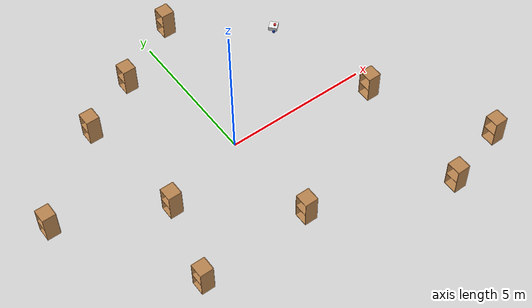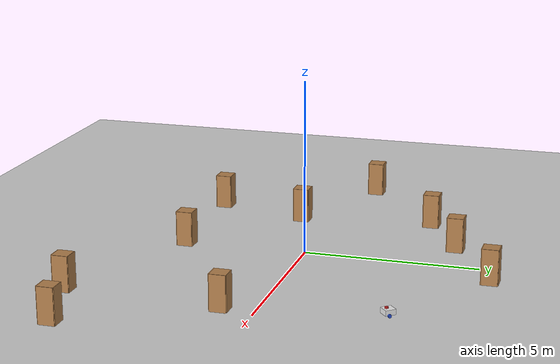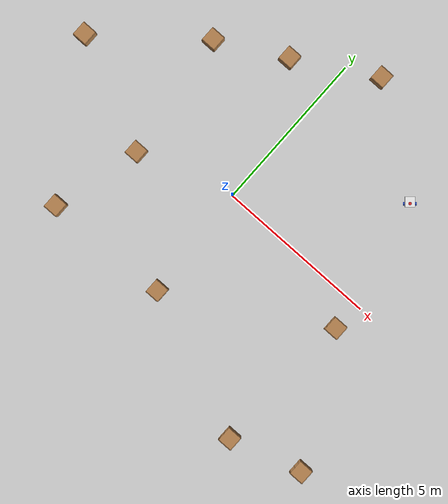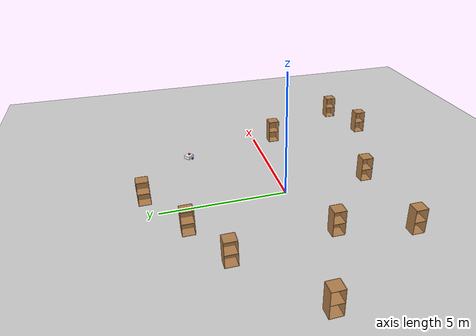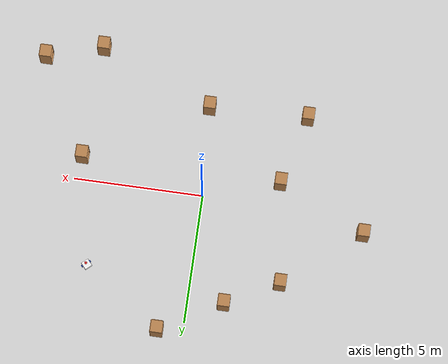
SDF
<sdf version="1.7">
 <world name="default">
  <light name="sun" type="directional">
   <pose>0 0 10 0 -0 0</pose>
   <diffuse>0.8 0.8 0.8 1</diffuse>
   <specular>0.2 0.2 0.2 1</specular>
   <attenuation>
    <range>1000</range>
    <constant>0.9</constant>
    <linear>0.01</linear>
    <quadratic>0.001</quadratic>
   </attenuation>
   <direction>-0.5 0.1 -0.9</direction>
   <spot><inner_angle>0</inner_angle><outer_angle>0</outer_angle><falloff>0</falloff></spot>
  </light>
  <model name="ground_plane">
   <static>1</static>
   <link name="link">
    <collision name="collision">
     <geometry><plane><normal>0 0 1</normal><size>100 100</size></plane></geometry>
     <surface><friction><ode><mu>100</mu><mu2>50</mu2></ode></friction></surface>
    </collision>
    <visual name="visual">
     <cast_shadows>0</cast_shadows>
     <geometry><plane><normal>0 0 1</normal><size>100 100</size></plane></geometry>
     <material>
      <script><uri>file://media/materials/scripts/gazebo.material</uri><name>Gazebo/Grey</name></script>
     </material>
    </visual>
   </link>
  </model>
  <gravity>0 0 -9.8</gravity>
  <magnetic_field>6e-06 2.3e-05 -4.2e-05</magnetic_field>
  <atmosphere type="adiabatic"/>
  <physics type="ode">
   <max_step_size>0.001</max_step_size>
   <real_time_factor>1</real_time_factor>
   <real_time_update_rate>1000</real_time_update_rate>
  </physics>
  <scene><ambient>0.4 0.4 0.4 1</ambient><background>0.7 0.7 0.7 1</background><shadows>1</shadows></scene>
  <audio><device>default</device></audio>
  <spherical_coordinates>
   <surface_model>EARTH_WGS84</surface_model>
   <latitude_deg>0</latitude_deg>
   <longitude_deg>0</longitude_deg>
   <elevation>0</elevation>
   <heading_deg>0</heading_deg>
  </spherical_coordinates>
  <model name="my_robot">
   <link name="base_link">
    <inertial>
     <pose>0.055714 0 0.078571 0 -0 0</pose>
     <mass>0.7</mass>
     <inertia>
      <ixx>0.0064169</ixx>
      <ixy>0</ixy>
      <ixz>0.00118929</ixz>
      <iyy>0.00745405</iyy>
      <iyz>0</iyz>
      <izz>0.00876214</izz>
     </inertia>
    </inertial>
    <collision name="base_link_fixed_joint_lump__chasis_collision">
     <pose>0.05 0 0.075 0 -0 0</pose>
     <geometry><box><size>0.3 0.3 0.15</size></box></geometry>
    </collision>
    <collision name="base_link_fixed_joint_lump__caster_wheel_collision_1">
     <pose>0.14 0 0 0 -0 0</pose>
     <geometry><sphere><radius>0.05</radius></sphere></geometry>
     <surface><friction><ode><mu>0.001</mu><mu2>0.001</mu2></ode></friction></surface>
    </collision>
    <collision name="base_link_fixed_joint_lump__laser_frame_collision_2">
     <pose>0 0 0.175 0 -0 0</pose>
     <geometry><cylinder><length>0.04</length><radius>0.05</radius></cylinder></geometry>
    </collision>
    <visual name="base_link_fixed_joint_lump__chasis_visual">
     <pose>0.05 0 0.075 0 -0 0</pose>
     <geometry><box><size>0.3 0.3 0.15</size></box></geometry>
     <material>
      <script><name>Gazebo/White</name><uri>file://media/materials/scripts/gazebo.material</uri></script>
     </material>
    </visual>
    <visual name="base_link_fixed_joint_lump__caster_wheel_visual_1">
     <pose>0.14 0 0 0 -0 0</pose>
     <geometry><sphere><radius>0.05</radius></sphere></geometry>
     <material>
      <script><name>Gazebo/Black</name><uri>file://media/materials/scripts/gazebo.material</uri></script>
     </material>
    </visual>
    <visual name="base_link_fixed_joint_lump__laser_frame_visual_2">
     <pose>0 0 0.175 0 -0 0</pose>
     <geometry><cylinder><length>0.04</length><radius>0.05</radius></cylinder></geometry>
     <material>
      <script><name>Gazebo/Red</name><uri>file://media/materials/scripts/gazebo.material</uri></script>
     </material>
    </visual>
    <sensor name="laser" type="ray">
     <visualize>1</visualize>
     <update_rate>10</update_rate>
     <ray>
      <scan>
       <horizontal>
        <samples>360</samples>
        <resolution>1</resolution>
        <min_angle>-3.14</min_angle>
        <max_angle>3.14</max_angle>
       </horizontal>
       <vertical><samples>1</samples><min_angle>0</min_angle><max_angle>0</max_angle></vertical>
      </scan>
      <range><min>0.3</min><max>12</max><resolution>0.01</resolution></range>
     </ray>
     <plugin name="laser_controller" filename="libgazebo_ros_ray_sensor.so">
      <ros><argument>-/out:=scan</argument></ros>
      <output_type>sensor_msgs/LaserScan</output_type>
      <frame_name>laser_frame</frame_name>
     </plugin>
     <pose>0 0 0.175 0 -0 0</pose>
    </sensor>
   </link>
   <joint name="left_wheel_joint" type="revolute">
    <pose relative_to="base_link">0 0.175 0 -1.5708 0 0</pose>
    <parent>base_link</parent>
    <child>left_wheel</child>
    <axis>
     <xyz>0 0 1</xyz>
     <limit><lower>-1e+16</lower><upper>1e+16</upper></limit>
     <dynamics><spring_reference>0</spring_reference><spring_stiffness>0</spring_stiffness></dynamics>
    </axis>
   </joint>
   <link name="left_wheel">
    <pose relative_to="left_wheel_joint">0 0 0 0 -0 0</pose>
    <inertial>
     <mass>0.1</mass>
     <inertia>
      <ixx>7.58333e-05</ixx>
      <ixy>0</ixy>
      <ixz>0</ixz>
      <iyy>7.58333e-05</iyy>
      <iyz>0</iyz>
      <izz>0.000125</izz>
     </inertia>
    </inertial>
    <collision name="left_wheel_collision"><geometry><sphere><radius>0.05</radius></sphere></geometry></collision>
    <visual name="left_wheel_visual">
     <geometry><cylinder><length>0.04</length><radius>0.05</radius></cylinder></geometry>
     <material>
      <script><name>Gazebo/Blue</name><uri>file://media/materials/scripts/gazebo.material</uri></script>
     </material>
    </visual>
   </link>
   <joint name="right_wheel_joint" type="revolute">
    <pose relative_to="base_link">0 -0.175 0 1.5708 -0 0</pose>
    <parent>base_link</parent>
    <child>right_wheel</child>
    <axis>
     <xyz>0 0 -1</xyz>
     <limit><lower>-1e+16</lower><upper>1e+16</upper></limit>
     <dynamics><spring_reference>0</spring_reference><spring_stiffness>0</spring_stiffness></dynamics>
    </axis>
   </joint>
   <link name="right_wheel">
    <pose relative_to="right_wheel_joint">0 0 0 0 -0 0</pose>
    <inertial>
     <mass>0.1</mass>
     <inertia>
      <ixx>7.58333e-05</ixx>
      <ixy>0</ixy>
      <ixz>0</ixz>
      <iyy>7.58333e-05</iyy>
      <iyz>0</iyz>
      <izz>0.000125</izz>
     </inertia>
    </inertial>
    <collision name="right_wheel_collision">
     <geometry><sphere><radius>0.05</radius></sphere></geometry>
    </collision>
    <visual name="right_wheel_visual">
     <geometry><cylinder><length>0.04</length><radius>0.05</radius></cylinder></geometry>
     <material>
      <script><name>Gazebo/Blue</name><uri>file://media/materials/scripts/gazebo.material</uri></script>
     </material>
    </visual>
   </link>
   <static>0</static>
   <plugin name="diff_drive" filename="libgazebo_ros_diff_drive.so">
    <left_joint>left_wheel_joint</left_joint>
    <right_joint>right_wheel_joint</right_joint>
    <wheel_separation>0.35</wheel_separation>
    <wheel_diameter>0.1</wheel_diameter>
    <max_wheel_torque>200</max_wheel_torque>
    <max_wheel_acceleration>10.0</max_wheel_acceleration>
    <odometry_frame>odom</odometry_frame>
    <robot_base_frame>base_link</robot_base_frame>
    <publish_odom>1</publish_odom>
    <publish_odom_tf>1</publish_odom_tf>
    <publish_wheel_tf>1</publish_wheel_tf>
   </plugin>
   <pose>4.03582 3.267 0.049997 -1.5e-05 -2.1e-05 2.29065</pose>
  </model>
  <model name="cabinet">
   <static>1</static>
   <link name="cabinet_bottom_plate">
    <inertial>
     <pose>0 0 -1 0 -0 0</pose>
     <inertia><ixx>2.05</ixx><ixy>0</ixy><ixz>0</ixz><iyy>2.05</iyy><iyz>0</iyz><izz>2.05</izz></inertia>
     <mass>25</mass>
    </inertial>
    <collision name="cabinet_bottom_plate_geom">
     <pose>0 0 0.01 0 -0 0</pose>
     <geometry><box><size>0.45 0.45 0.02</size></box></geometry>
    </collision>
    <visual name="cabinet_bottom_plate_geom_visual">
     <pose>0 0 0.01 0 -0 0</pose>
     <geometry><box><size>0.45 0.45 0.02</size></box></geometry>
     <material>
      <script><uri>file://media/materials/scripts/gazebo.material</uri><name>Gazebo/Wood</name></script>
     </material>
    </visual>
    <collision name="cabinet_bottom_plate_geom_cabinet_back_plate">
     <pose>0.235 0 0.51 0 -0 0</pose>
     <geometry><box><size>0.02 0.45 1.02</size></box></geometry>
    </collision>
    <visual name="cabinet_bottom_plate_geom_cabinet_back_plate_visual">
     <pose>0.235 0 0.51 0 -0 0</pose>
     <geometry><box><size>0.02 0.45 1.02</size></box></geometry>
     <material>
      <script><uri>file://media/materials/scripts/gazebo.material</uri><name>Gazebo/Wood</name></script>
     </material>
    </visual>
    <collision name="cabinet_bottom_plate_geom_cabinet_left_plate">
     <pose>0 0.235 0.51 0 -0 0</pose>
     <geometry><box><size>0.45 0.02 1.02</size></box></geometry>
    </collision>
    <visual name="cabinet_bottom_plate_geom_cabinet_left_plate_visual">
     <pose>0 0.235 0.51 0 -0 0</pose>
     <geometry><box><size>0.45 0.02 1.02</size></box></geometry>
     <material>
      <script><uri>file://media/materials/scripts/gazebo.material</uri><name>Gazebo/Wood</name></script>
     </material>
    </visual>
    <collision name="cabinet_bottom_plate_geom_cabinet_middle_plate">
     <pose>0 0 0.51 0 -0 0</pose>
     <geometry><box><size>0.45 0.45 0.02</size></box></geometry>
    </collision>
    <visual name="cabinet_bottom_plate_geom_cabinet_middle_plate_visual">
     <pose>0 0 0.51 0 -0 0</pose>
     <geometry><box><size>0.45 0.45 0.02</size></box></geometry>
     <material>
      <script><uri>file://media/materials/scripts/gazebo.material</uri><name>Gazebo/Wood</name></script>
     </material>
    </visual>
    <collision name="cabinet_bottom_plate_geom_cabinet_right_plate">
     <pose>0 -0.235 0.51 0 -0 0</pose>
     <geometry><box><size>0.45 0.02 1.02</size></box></geometry>
    </collision>
    <visual name="cabinet_bottom_plate_geom_cabinet_right_plate_visual">
     <pose>0 -0.235 0.51 0 -0 0</pose>
     <geometry><box><size>0.45 0.02 1.02</size></box></geometry>
     <material>
      <script><uri>file://media/materials/scripts/gazebo.material</uri><name>Gazebo/Wood</name></script>
     </material>
    </visual>
    <collision name="cabinet_bottom_plate_geom_cabinet_top_plate">
     <pose>0 0 1.01 0 -0 0</pose>
     <geometry><box><size>0.45 0.45 0.02</size></box></geometry>
    </collision>
    <visual name="cabinet_bottom_plate_geom_cabinet_top_plate_visual">
     <pose>0 0 1.01 0 -0 0</pose>
     <geometry><box><size>0.45 0.45 0.02</size></box></geometry>
     <material>
      <script><uri>file://media/materials/scripts/gazebo.material</uri><name>Gazebo/Wood</name></script>
     </material>
    </visual>
   </link>
   <pose>-3.66222 -3.61469 0 0 -0 0</pose>
  </model>
  <model name="cabinet_clone">
   <static>1</static>
   <link name="cabinet_bottom_plate">
    <inertial>
     <pose>0 0 -1 0 -0 0</pose>
     <inertia><ixx>2.05</ixx><ixy>0</ixy><ixz>0</ixz><iyy>2.05</iyy><iyz>0</iyz><izz>2.05</izz></inertia>
     <mass>25</mass>
    </inertial>
    <collision name="cabinet_bottom_plate_geom">
     <pose>0 0 0.01 0 -0 0</pose>
     <geometry><box><size>0.45 0.45 0.02</size></box></geometry>
    </collision>
    <visual name="cabinet_bottom_plate_geom_visual">
     <pose>0 0 0.01 0 -0 0</pose>
     <geometry><box><size>0.45 0.45 0.02</size></box></geometry>
     <material>
      <script><uri>file://media/materials/scripts/gazebo.material</uri><name>Gazebo/Wood</name></script>
     </material>
    </visual>
    <collision name="cabinet_bottom_plate_geom_cabinet_back_plate">
     <pose>0.235 0 0.51 0 -0 0</pose>
     <geometry><box><size>0.02 0.45 1.02</size></box></geometry>
    </collision>
    <visual name="cabinet_bottom_plate_geom_cabinet_back_plate_visual">
     <pose>0.235 0 0.51 0 -0 0</pose>
     <geometry><box><size>0.02 0.45 1.02</size></box></geometry>
     <material>
      <script><uri>file://media/materials/scripts/gazebo.material</uri><name>Gazebo/Wood</name></script>
     </material>
    </visual>
    <collision name="cabinet_bottom_plate_geom_cabinet_left_plate">
     <pose>0 0.235 0.51 0 -0 0</pose>
     <geometry><box><size>0.45 0.02 1.02</size></box></geometry>
    </collision>
    <visual name="cabinet_bottom_plate_geom_cabinet_left_plate_visual">
     <pose>0 0.235 0.51 0 -0 0</pose>
     <geometry><box><size>0.45 0.02 1.02</size></box></geometry>
     <material>
      <script><uri>file://media/materials/scripts/gazebo.material</uri><name>Gazebo/Wood</name></script>
     </material>
    </visual>
    <collision name="cabinet_bottom_plate_geom_cabinet_middle_plate">
     <pose>0 0 0.51 0 -0 0</pose>
     <geometry><box><size>0.45 0.45 0.02</size></box></geometry>
    </collision>
    <visual name="cabinet_bottom_plate_geom_cabinet_middle_plate_visual">
     <pose>0 0 0.51 0 -0 0</pose>
     <geometry><box><size>0.45 0.45 0.02</size></box></geometry>
     <material>
      <script><uri>file://media/materials/scripts/gazebo.material</uri><name>Gazebo/Wood</name></script>
     </material>
    </visual>
    <collision name="cabinet_bottom_plate_geom_cabinet_right_plate">
     <pose>0 -0.235 0.51 0 -0 0</pose>
     <geometry><box><size>0.45 0.02 1.02</size></box></geometry>
    </collision>
    <visual name="cabinet_bottom_plate_geom_cabinet_right_plate_visual">
     <pose>0 -0.235 0.51 0 -0 0</pose>
     <geometry><box><size>0.45 0.02 1.02</size></box></geometry>
     <material>
      <script><uri>file://media/materials/scripts/gazebo.material</uri><name>Gazebo/Wood</name></script>
     </material>
    </visual>
    <collision name="cabinet_bottom_plate_geom_cabinet_top_plate">
     <pose>0 0 1.01 0 -0 0</pose>
     <geometry><box><size>0.45 0.45 0.02</size></box></geometry>
    </collision>
    <visual name="cabinet_bottom_plate_geom_cabinet_top_plate_visual">
     <pose>0 0 1.01 0 -0 0</pose>
     <geometry><box><size>0.45 0.45 0.02</size></box></geometry>
     <material>
      <script><uri>file://media/materials/scripts/gazebo.material</uri><name>Gazebo/Wood</name></script>
     </material>
    </visual>
   </link>
   <pose>-6.33097 0.678319 0 0 -0 0</pose>
  </model>
  <model name="cabinet_clone_0">
   <static>1</static>
   <link name="cabinet_bottom_plate">
    <inertial>
     <pose>0 0 -1 0 -0 0</pose>
     <inertia><ixx>2.05</ixx><ixy>0</ixy><ixz>0</ixz><iyy>2.05</iyy><iyz>0</iyz><izz>2.05</izz></inertia>
     <mass>25</mass>
    </inertial>
    <collision name="cabinet_bottom_plate_geom">
     <pose>0 0 0.01 0 -0 0</pose>
     <geometry><box><size>0.45 0.45 0.02</size></box></geometry>
    </collision>
    <visual name="cabinet_bottom_plate_geom_visual">
     <pose>0 0 0.01 0 -0 0</pose>
     <geometry><box><size>0.45 0.45 0.02</size></box></geometry>
     <material>
      <script><uri>file://media/materials/scripts/gazebo.material</uri><name>Gazebo/Wood</name></script>
     </material>
    </visual>
    <collision name="cabinet_bottom_plate_geom_cabinet_back_plate">
     <pose>0.235 0 0.51 0 -0 0</pose>
     <geometry><box><size>0.02 0.45 1.02</size></box></geometry>
    </collision>
    <visual name="cabinet_bottom_plate_geom_cabinet_back_plate_visual">
     <pose>0.235 0 0.51 0 -0 0</pose>
     <geometry><box><size>0.02 0.45 1.02</size></box></geometry>
     <material>
      <script><uri>file://media/materials/scripts/gazebo.material</uri><name>Gazebo/Wood</name></script>
     </material>
    </visual>
    <collision name="cabinet_bottom_plate_geom_cabinet_left_plate">
     <pose>0 0.235 0.51 0 -0 0</pose>
     <geometry><box><size>0.45 0.02 1.02</size></box></geometry>
    </collision>
    <visual name="cabinet_bottom_plate_geom_cabinet_left_plate_visual">
     <pose>0 0.235 0.51 0 -0 0</pose>
     <geometry><box><size>0.45 0.02 1.02</size></box></geometry>
     <material>
      <script><uri>file://media/materials/scripts/gazebo.material</uri><name>Gazebo/Wood</name></script>
     </material>
    </visual>
    <collision name="cabinet_bottom_plate_geom_cabinet_middle_plate">
     <pose>0 0 0.51 0 -0 0</pose>
     <geometry><box><size>0.45 0.45 0.02</size></box></geometry>
    </collision>
    <visual name="cabinet_bottom_plate_geom_cabinet_middle_plate_visual">
     <pose>0 0 0.51 0 -0 0</pose>
     <geometry><box><size>0.45 0.45 0.02</size></box></geometry>
     <material>
      <script><uri>file://media/materials/scripts/gazebo.material</uri><name>Gazebo/Wood</name></script>
     </material>
    </visual>
    <collision name="cabinet_bottom_plate_geom_cabinet_right_plate">
     <pose>0 -0.235 0.51 0 -0 0</pose>
     <geometry><box><size>0.45 0.02 1.02</size></box></geometry>
    </collision>
    <visual name="cabinet_bottom_plate_geom_cabinet_right_plate_visual">
     <pose>0 -0.235 0.51 0 -0 0</pose>
     <geometry><box><size>0.45 0.02 1.02</size></box></geometry>
     <material>
      <script><uri>file://media/materials/scripts/gazebo.material</uri><name>Gazebo/Wood</name></script>
     </material>
    </visual>
    <collision name="cabinet_bottom_plate_geom_cabinet_top_plate">
     <pose>0 0 1.01 0 -0 0</pose>
     <geometry><box><size>0.45 0.45 0.02</size></box></geometry>
    </collision>
    <visual name="cabinet_bottom_plate_geom_cabinet_top_plate_visual">
     <pose>0 0 1.01 0 -0 0</pose>
     <geometry><box><size>0.45 0.45 0.02</size></box></geometry>
     <material>
      <script><uri>file://media/materials/scripts/gazebo.material</uri><name>Gazebo/Wood</name></script>
     </material>
    </visual>
   </link>
   <pose>-2.94251 -0.892228 0 0 -0 0</pose>
  </model>
  <model name="cabinet_clone_1">
   <static>1</static>
   <link name="cabinet_bottom_plate">
    <inertial>
     <pose>0 0 -1 0 -0 0</pose>
     <inertia><ixx>2.05</ixx><ixy>0</ixy><ixz>0</ixz><iyy>2.05</iyy><iyz>0</iyz><izz>2.05</izz></inertia>
     <mass>25</mass>
    </inertial>
    <collision name="cabinet_bottom_plate_geom">
     <pose>0 0 0.01 0 -0 0</pose>
     <geometry><box><size>0.45 0.45 0.02</size></box></geometry>
    </collision>
    <visual name="cabinet_bottom_plate_geom_visual">
     <pose>0 0 0.01 0 -0 0</pose>
     <geometry><box><size>0.45 0.45 0.02</size></box></geometry>
     <material>
      <script><uri>file://media/materials/scripts/gazebo.material</uri><name>Gazebo/Wood</name></script>
     </material>
    </visual>
    <collision name="cabinet_bottom_plate_geom_cabinet_back_plate">
     <pose>0.235 0 0.51 0 -0 0</pose>
     <geometry><box><size>0.02 0.45 1.02</size></box></geometry>
    </collision>
    <visual name="cabinet_bottom_plate_geom_cabinet_back_plate_visual">
     <pose>0.235 0 0.51 0 -0 0</pose>
     <geometry><box><size>0.02 0.45 1.02</size></box></geometry>
     <material>
      <script><uri>file://media/materials/scripts/gazebo.material</uri><name>Gazebo/Wood</name></script>
     </material>
    </visual>
    <collision name="cabinet_bottom_plate_geom_cabinet_left_plate">
     <pose>0 0.235 0.51 0 -0 0</pose>
     <geometry><box><size>0.45 0.02 1.02</size></box></geometry>
    </collision>
    <visual name="cabinet_bottom_plate_geom_cabinet_left_plate_visual">
     <pose>0 0.235 0.51 0 -0 0</pose>
     <geometry><box><size>0.45 0.02 1.02</size></box></geometry>
     <material>
      <script><uri>file://media/materials/scripts/gazebo.material</uri><name>Gazebo/Wood</name></script>
     </material>
    </visual>
    <collision name="cabinet_bottom_plate_geom_cabinet_middle_plate">
     <pose>0 0 0.51 0 -0 0</pose>
     <geometry><box><size>0.45 0.45 0.02</size></box></geometry>
    </collision>
    <visual name="cabinet_bottom_plate_geom_cabinet_middle_plate_visual">
     <pose>0 0 0.51 0 -0 0</pose>
     <geometry><box><size>0.45 0.45 0.02</size></box></geometry>
     <material>
      <script><uri>file://media/materials/scripts/gazebo.material</uri><name>Gazebo/Wood</name></script>
     </material>
    </visual>
    <collision name="cabinet_bottom_plate_geom_cabinet_right_plate">
     <pose>0 -0.235 0.51 0 -0 0</pose>
     <geometry><box><size>0.45 0.02 1.02</size></box></geometry>
    </collision>
    <visual name="cabinet_bottom_plate_geom_cabinet_right_plate_visual">
     <pose>0 -0.235 0.51 0 -0 0</pose>
     <geometry><box><size>0.45 0.02 1.02</size></box></geometry>
     <material>
      <script><uri>file://media/materials/scripts/gazebo.material</uri><name>Gazebo/Wood</name></script>
     </material>
    </visual>
    <collision name="cabinet_bottom_plate_geom_cabinet_top_plate">
     <pose>0 0 1.01 0 -0 0</pose>
     <geometry><box><size>0.45 0.45 0.02</size></box></geometry>
    </collision>
    <visual name="cabinet_bottom_plate_geom_cabinet_top_plate_visual">
     <pose>0 0 1.01 0 -0 0</pose>
     <geometry><box><size>0.45 0.45 0.02</size></box></geometry>
     <material>
      <script><uri>file://media/materials/scripts/gazebo.material</uri><name>Gazebo/Wood</name></script>
     </material>
    </visual>
   </link>
   <pose>0.183789 -3.51176 0 0 -0 0</pose>
  </model>
  <model name="cabinet_clone_2">
   <static>1</static>
   <link name="cabinet_bottom_plate">
    <inertial>
     <pose>0 0 -1 0 -0 0</pose>
     <inertia><ixx>2.05</ixx><ixy>0</ixy><ixz>0</ixz><iyy>2.05</iyy><iyz>0</iyz><izz>2.05</izz></inertia>
     <mass>25</mass>
    </inertial>
    <collision name="cabinet_bottom_plate_geom">
     <pose>0 0 0.01 0 -0 0</pose>
     <geometry><box><size>0.45 0.45 0.02</size></box></geometry>
    </collision>
    <visual name="cabinet_bottom_plate_geom_visual">
     <pose>0 0 0.01 0 -0 0</pose>
     <geometry><box><size>0.45 0.45 0.02</size></box></geometry>
     <material>
      <script><uri>file://media/materials/scripts/gazebo.material</uri><name>Gazebo/Wood</name></script>
     </material>
    </visual>
    <collision name="cabinet_bottom_plate_geom_cabinet_back_plate">
     <pose>0.235 0 0.51 0 -0 0</pose>
     <geometry><box><size>0.02 0.45 1.02</size></box></geometry>
    </collision>
    <visual name="cabinet_bottom_plate_geom_cabinet_back_plate_visual">
     <pose>0.235 0 0.51 0 -0 0</pose>
     <geometry><box><size>0.02 0.45 1.02</size></box></geometry>
     <material>
      <script><uri>file://media/materials/scripts/gazebo.material</uri><name>Gazebo/Wood</name></script>
     </material>
    </visual>
    <collision name="cabinet_bottom_plate_geom_cabinet_left_plate">
     <pose>0 0.235 0.51 0 -0 0</pose>
     <geometry><box><size>0.45 0.02 1.02</size></box></geometry>
    </collision>
    <visual name="cabinet_bottom_plate_geom_cabinet_left_plate_visual">
     <pose>0 0.235 0.51 0 -0 0</pose>
     <geometry><box><size>0.45 0.02 1.02</size></box></geometry>
     <material>
      <script><uri>file://media/materials/scripts/gazebo.material</uri><name>Gazebo/Wood</name></script>
     </material>
    </visual>
    <collision name="cabinet_bottom_plate_geom_cabinet_middle_plate">
     <pose>0 0 0.51 0 -0 0</pose>
     <geometry><box><size>0.45 0.45 0.02</size></box></geometry>
    </collision>
    <visual name="cabinet_bottom_plate_geom_cabinet_middle_plate_visual">
     <pose>0 0 0.51 0 -0 0</pose>
     <geometry><box><size>0.45 0.45 0.02</size></box></geometry>
     <material>
      <script><uri>file://media/materials/scripts/gazebo.material</uri><name>Gazebo/Wood</name></script>
     </material>
    </visual>
    <collision name="cabinet_bottom_plate_geom_cabinet_right_plate">
     <pose>0 -0.235 0.51 0 -0 0</pose>
     <geometry><box><size>0.45 0.02 1.02</size></box></geometry>
    </collision>
    <visual name="cabinet_bottom_plate_geom_cabinet_right_plate_visual">
     <pose>0 -0.235 0.51 0 -0 0</pose>
     <geometry><box><size>0.45 0.02 1.02</size></box></geometry>
     <material>
      <script><uri>file://media/materials/scripts/gazebo.material</uri><name>Gazebo/Wood</name></script>
     </material>
    </visual>
    <collision name="cabinet_bottom_plate_geom_cabinet_top_plate">
     <pose>0 0 1.01 0 -0 0</pose>
     <geometry><box><size>0.45 0.45 0.02</size></box></geometry>
    </collision>
    <visual name="cabinet_bottom_plate_geom_cabinet_top_plate_visual">
     <pose>0 0 1.01 0 -0 0</pose>
     <geometry><box><size>0.45 0.45 0.02</size></box></geometry>
     <material>
      <script><uri>file://media/materials/scripts/gazebo.material</uri><name>Gazebo/Wood</name></script>
     </material>
    </visual>
   </link>
   <pose>4.61256 -5.33696 0 0 -0 0</pose>
  </model>
  <model name="cabinet_clone_3">
   <static>1</static>
   <link name="cabinet_bottom_plate">
    <inertial>
     <pose>0 0 -1 0 -0 0</pose>
     <inertia><ixx>2.05</ixx><ixy>0</ixy><ixz>0</ixz><iyy>2.05</iyy><iyz>0</iyz><izz>2.05</izz></inertia>
     <mass>25</mass>
    </inertial>
    <collision name="cabinet_bottom_plate_geom">
     <pose>0 0 0.01 0 -0 0</pose>
     <geometry><box><size>0.45 0.45 0.02</size></box></geometry>
    </collision>
    <visual name="cabinet_bottom_plate_geom_visual">
     <pose>0 0 0.01 0 -0 0</pose>
     <geometry><box><size>0.45 0.45 0.02</size></box></geometry>
     <material>
      <script><uri>file://media/materials/scripts/gazebo.material</uri><name>Gazebo/Wood</name></script>
     </material>
    </visual>
    <collision name="cabinet_bottom_plate_geom_cabinet_back_plate">
     <pose>0.235 0 0.51 0 -0 0</pose>
     <geometry><box><size>0.02 0.45 1.02</size></box></geometry>
    </collision>
    <visual name="cabinet_bottom_plate_geom_cabinet_back_plate_visual">
     <pose>0.235 0 0.51 0 -0 0</pose>
     <geometry><box><size>0.02 0.45 1.02</size></box></geometry>
     <material>
      <script><uri>file://media/materials/scripts/gazebo.material</uri><name>Gazebo/Wood</name></script>
     </material>
    </visual>
    <collision name="cabinet_bottom_plate_geom_cabinet_left_plate">
     <pose>0 0.235 0.51 0 -0 0</pose>
     <geometry><box><size>0.45 0.02 1.02</size></box></geometry>
    </collision>
    <visual name="cabinet_bottom_plate_geom_cabinet_left_plate_visual">
     <pose>0 0.235 0.51 0 -0 0</pose>
     <geometry><box><size>0.45 0.02 1.02</size></box></geometry>
     <material>
      <script><uri>file://media/materials/scripts/gazebo.material</uri><name>Gazebo/Wood</name></script>
     </material>
    </visual>
    <collision name="cabinet_bottom_plate_geom_cabinet_middle_plate">
     <pose>0 0 0.51 0 -0 0</pose>
     <geometry><box><size>0.45 0.45 0.02</size></box></geometry>
    </collision>
    <visual name="cabinet_bottom_plate_geom_cabinet_middle_plate_visual">
     <pose>0 0 0.51 0 -0 0</pose>
     <geometry><box><size>0.45 0.45 0.02</size></box></geometry>
     <material>
      <script><uri>file://media/materials/scripts/gazebo.material</uri><name>Gazebo/Wood</name></script>
     </material>
    </visual>
    <collision name="cabinet_bottom_plate_geom_cabinet_right_plate">
     <pose>0 -0.235 0.51 0 -0 0</pose>
     <geometry><box><size>0.45 0.02 1.02</size></box></geometry>
    </collision>
    <visual name="cabinet_bottom_plate_geom_cabinet_right_plate_visual">
     <pose>0 -0.235 0.51 0 -0 0</pose>
     <geometry><box><size>0.45 0.02 1.02</size></box></geometry>
     <material>
      <script><uri>file://media/materials/scripts/gazebo.material</uri><name>Gazebo/Wood</name></script>
     </material>
    </visual>
    <collision name="cabinet_bottom_plate_geom_cabinet_top_plate">
     <pose>0 0 1.01 0 -0 0</pose>
     <geometry><box><size>0.45 0.45 0.02</size></box></geometry>
    </collision>
    <visual name="cabinet_bottom_plate_geom_cabinet_top_plate_visual">
     <pose>0 0 1.01 0 -0 0</pose>
     <geometry><box><size>0.45 0.45 0.02</size></box></geometry>
     <material>
      <script><uri>file://media/materials/scripts/gazebo.material</uri><name>Gazebo/Wood</name></script>
     </material>
    </visual>
   </link>
   <pose>-1.41451 4.10035 0 0 -0 0</pose>
  </model>
  <model name="cabinet_clone_4">
   <static>1</static>
   <link name="cabinet_bottom_plate">
    <inertial>
     <pose>0 0 -1 0 -0 0</pose>
     <inertia><ixx>2.05</ixx><ixy>0</ixy><ixz>0</ixz><iyy>2.05</iyy><iyz>0</iyz><izz>2.05</izz></inertia>
     <mass>25</mass>
    </inertial>
    <collision name="cabinet_bottom_plate_geom">
     <pose>0 0 0.01 0 -0 0</pose>
     <geometry><box><size>0.45 0.45 0.02</size></box></geometry>
    </collision>
    <visual name="cabinet_bottom_plate_geom_visual">
     <pose>0 0 0.01 0 -0 0</pose>
     <geometry><box><size>0.45 0.45 0.02</size></box></geometry>
     <material>
      <script><uri>file://media/materials/scripts/gazebo.material</uri><name>Gazebo/Wood</name></script>
     </material>
    </visual>
    <collision name="cabinet_bottom_plate_geom_cabinet_back_plate">
     <pose>0.235 0 0.51 0 -0 0</pose>
     <geometry><box><size>0.02 0.45 1.02</size></box></geometry>
    </collision>
    <visual name="cabinet_bottom_plate_geom_cabinet_back_plate_visual">
     <pose>0.235 0 0.51 0 -0 0</pose>
     <geometry><box><size>0.02 0.45 1.02</size></box></geometry>
     <material>
      <script><uri>file://media/materials/scripts/gazebo.material</uri><name>Gazebo/Wood</name></script>
     </material>
    </visual>
    <collision name="cabinet_bottom_plate_geom_cabinet_left_plate">
     <pose>0 0.235 0.51 0 -0 0</pose>
     <geometry><box><size>0.45 0.02 1.02</size></box></geometry>
    </collision>
    <visual name="cabinet_bottom_plate_geom_cabinet_left_plate_visual">
     <pose>0 0.235 0.51 0 -0 0</pose>
     <geometry><box><size>0.45 0.02 1.02</size></box></geometry>
     <material>
      <script><uri>file://media/materials/scripts/gazebo.material</uri><name>Gazebo/Wood</name></script>
     </material>
    </visual>
    <collision name="cabinet_bottom_plate_geom_cabinet_middle_plate">
     <pose>0 0 0.51 0 -0 0</pose>
     <geometry><box><size>0.45 0.45 0.02</size></box></geometry>
    </collision>
    <visual name="cabinet_bottom_plate_geom_cabinet_middle_plate_visual">
     <pose>0 0 0.51 0 -0 0</pose>
     <geometry><box><size>0.45 0.45 0.02</size></box></geometry>
     <material>
      <script><uri>file://media/materials/scripts/gazebo.material</uri><name>Gazebo/Wood</name></script>
     </material>
    </visual>
    <collision name="cabinet_bottom_plate_geom_cabinet_right_plate">
     <pose>0 -0.235 0.51 0 -0 0</pose>
     <geometry><box><size>0.45 0.02 1.02</size></box></geometry>
    </collision>
    <visual name="cabinet_bottom_plate_geom_cabinet_right_plate_visual">
     <pose>0 -0.235 0.51 0 -0 0</pose>
     <geometry><box><size>0.45 0.02 1.02</size></box></geometry>
     <material>
      <script><uri>file://media/materials/scripts/gazebo.material</uri><name>Gazebo/Wood</name></script>
     </material>
    </visual>
    <collision name="cabinet_bottom_plate_geom_cabinet_top_plate">
     <pose>0 0 1.01 0 -0 0</pose>
     <geometry><box><size>0.45 0.45 0.02</size></box></geometry>
    </collision>
    <visual name="cabinet_bottom_plate_geom_cabinet_top_plate_visual">
     <pose>0 0 1.01 0 -0 0</pose>
     <geometry><box><size>0.45 0.45 0.02</size></box></geometry>
     <material>
      <script><uri>file://media/materials/scripts/gazebo.material</uri><name>Gazebo/Wood</name></script>
     </material>
    </visual>
   </link>
   <pose>-3.42921 3.02994 0 0 -0 0</pose>
  </model>
  <model name="cabinet_clone_5">
   <static>1</static>
   <link name="cabinet_bottom_plate">
    <inertial>
     <pose>0 0 -1 0 -0 0</pose>
     <inertia><ixx>2.05</ixx><ixy>0</ixy><ixz>0</ixz><iyy>2.05</iyy><iyz>0</iyz><izz>2.05</izz></inertia>
     <mass>25</mass>
    </inertial>
    <collision name="cabinet_bottom_plate_geom">
     <pose>0 0 0.01 0 -0 0</pose>
     <geometry><box><size>0.45 0.45 0.02</size></box></geometry>
    </collision>
    <visual name="cabinet_bottom_plate_geom_visual">
     <pose>0 0 0.01 0 -0 0</pose>
     <geometry><box><size>0.45 0.45 0.02</size></box></geometry>
     <material>
      <script><uri>file://media/materials/scripts/gazebo.material</uri><name>Gazebo/Wood</name></script>
     </material>
    </visual>
    <collision name="cabinet_bottom_plate_geom_cabinet_back_plate">
     <pose>0.235 0 0.51 0 -0 0</pose>
     <geometry><box><size>0.02 0.45 1.02</size></box></geometry>
    </collision>
    <visual name="cabinet_bottom_plate_geom_cabinet_back_plate_visual">
     <pose>0.235 0 0.51 0 -0 0</pose>
     <geometry><box><size>0.02 0.45 1.02</size></box></geometry>
     <material>
      <script><uri>file://media/materials/scripts/gazebo.material</uri><name>Gazebo/Wood</name></script>
     </material>
    </visual>
    <collision name="cabinet_bottom_plate_geom_cabinet_left_plate">
     <pose>0 0.235 0.51 0 -0 0</pose>
     <geometry><box><size>0.45 0.02 1.02</size></box></geometry>
    </collision>
    <visual name="cabinet_bottom_plate_geom_cabinet_left_plate_visual">
     <pose>0 0.235 0.51 0 -0 0</pose>
     <geometry><box><size>0.45 0.02 1.02</size></box></geometry>
     <material>
      <script><uri>file://media/materials/scripts/gazebo.material</uri><name>Gazebo/Wood</name></script>
     </material>
    </visual>
    <collision name="cabinet_bottom_plate_geom_cabinet_middle_plate">
     <pose>0 0 0.51 0 -0 0</pose>
     <geometry><box><size>0.45 0.45 0.02</size></box></geometry>
    </collision>
    <visual name="cabinet_bottom_plate_geom_cabinet_middle_plate_visual">
     <pose>0 0 0.51 0 -0 0</pose>
     <geometry><box><size>0.45 0.45 0.02</size></box></geometry>
     <material>
      <script><uri>file://media/materials/scripts/gazebo.material</uri><name>Gazebo/Wood</name></script>
     </material>
    </visual>
    <collision name="cabinet_bottom_plate_geom_cabinet_right_plate">
     <pose>0 -0.235 0.51 0 -0 0</pose>
     <geometry><box><size>0.45 0.02 1.02</size></box></geometry>
    </collision>
    <visual name="cabinet_bottom_plate_geom_cabinet_right_plate_visual">
     <pose>0 -0.235 0.51 0 -0 0</pose>
     <geometry><box><size>0.45 0.02 1.02</size></box></geometry>
     <material>
      <script><uri>file://media/materials/scripts/gazebo.material</uri><name>Gazebo/Wood</name></script>
     </material>
    </visual>
    <collision name="cabinet_bottom_plate_geom_cabinet_top_plate">
     <pose>0 0 1.01 0 -0 0</pose>
     <geometry><box><size>0.45 0.45 0.02</size></box></geometry>
    </collision>
    <visual name="cabinet_bottom_plate_geom_cabinet_top_plate_visual">
     <pose>0 0 1.01 0 -0 0</pose>
     <geometry><box><size>0.45 0.45 0.02</size></box></geometry>
     <material>
      <script><uri>file://media/materials/scripts/gazebo.material</uri><name>Gazebo/Wood</name></script>
     </material>
    </visual>
   </link>
   <pose>4.79434 -0.898456 0 0 -0 0</pose>
  </model>
  <model name="cabinet_clone_6">
   <static>1</static>
   <link name="cabinet_bottom_plate">
    <inertial>
     <pose>0 0 -1 0 -0 0</pose>
     <inertia><ixx>2.05</ixx><ixy>0</ixy><ixz>0</ixz><iyy>2.05</iyy><iyz>0</iyz><izz>2.05</izz></inertia>
     <mass>25</mass>
    </inertial>
    <collision name="cabinet_bottom_plate_geom">
     <pose>0 0 0.01 0 -0 0</pose>
     <geometry><box><size>0.45 0.45 0.02</size></box></geometry>
    </collision>
    <visual name="cabinet_bottom_plate_geom_visual">
     <pose>0 0 0.01 0 -0 0</pose>
     <geometry><box><size>0.45 0.45 0.02</size></box></geometry>
     <material>
      <script><uri>file://media/materials/scripts/gazebo.material</uri><name>Gazebo/Wood</name></script>
     </material>
    </visual>
    <collision name="cabinet_bottom_plate_geom_cabinet_back_plate">
     <pose>0.235 0 0.51 0 -0 0</pose>
     <geometry><box><size>0.02 0.45 1.02</size></box></geometry>
    </collision>
    <visual name="cabinet_bottom_plate_geom_cabinet_back_plate_visual">
     <pose>0.235 0 0.51 0 -0 0</pose>
     <geometry><box><size>0.02 0.45 1.02</size></box></geometry>
     <material>
      <script><uri>file://media/materials/scripts/gazebo.material</uri><name>Gazebo/Wood</name></script>
     </material>
    </visual>
    <collision name="cabinet_bottom_plate_geom_cabinet_left_plate">
     <pose>0 0.235 0.51 0 -0 0</pose>
     <geometry><box><size>0.45 0.02 1.02</size></box></geometry>
    </collision>
    <visual name="cabinet_bottom_plate_geom_cabinet_left_plate_visual">
     <pose>0 0.235 0.51 0 -0 0</pose>
     <geometry><box><size>0.45 0.02 1.02</size></box></geometry>
     <material>
      <script><uri>file://media/materials/scripts/gazebo.material</uri><name>Gazebo/Wood</name></script>
     </material>
    </visual>
    <collision name="cabinet_bottom_plate_geom_cabinet_middle_plate">
     <pose>0 0 0.51 0 -0 0</pose>
     <geometry><box><size>0.45 0.45 0.02</size></box></geometry>
    </collision>
    <visual name="cabinet_bottom_plate_geom_cabinet_middle_plate_visual">
     <pose>0 0 0.51 0 -0 0</pose>
     <geometry><box><size>0.45 0.45 0.02</size></box></geometry>
     <material>
      <script><uri>file://media/materials/scripts/gazebo.material</uri><name>Gazebo/Wood</name></script>
     </material>
    </visual>
    <collision name="cabinet_bottom_plate_geom_cabinet_right_plate">
     <pose>0 -0.235 0.51 0 -0 0</pose>
     <geometry><box><size>0.45 0.02 1.02</size></box></geometry>
    </collision>
    <visual name="cabinet_bottom_plate_geom_cabinet_right_plate_visual">
     <pose>0 -0.235 0.51 0 -0 0</pose>
     <geometry><box><size>0.45 0.02 1.02</size></box></geometry>
     <material>
      <script><uri>file://media/materials/scripts/gazebo.material</uri><name>Gazebo/Wood</name></script>
     </material>
    </visual>
    <collision name="cabinet_bottom_plate_geom_cabinet_top_plate">
     <pose>0 0 1.01 0 -0 0</pose>
     <geometry><box><size>0.45 0.45 0.02</size></box></geometry>
    </collision>
    <visual name="cabinet_bottom_plate_geom_cabinet_top_plate_visual">
     <pose>0 0 1.01 0 -0 0</pose>
     <geometry><box><size>0.45 0.45 0.02</size></box></geometry>
     <material>
      <script><uri>file://media/materials/scripts/gazebo.material</uri><name>Gazebo/Wood</name></script>
     </material>
    </visual>
   </link>
   <pose>0.964574 5.44332 0 0 -0 0</pose>
  </model>
  <model name="cabinet_clone_7">
   <static>1</static>
   <link name="cabinet_bottom_plate">
    <inertial>
     <pose>0 0 -1 0 -0 0</pose>
     <inertia><ixx>2.05</ixx><ixy>0</ixy><ixz>0</ixz><iyy>2.05</iyy><iyz>0</iyz><izz>2.05</izz></inertia>
     <mass>25</mass>
    </inertial>
    <collision name="cabinet_bottom_plate_geom">
     <pose>0 0 0.01 0 -0 0</pose>
     <geometry><box><size>0.45 0.45 0.02</size></box></geometry>
    </collision>
    <visual name="cabinet_bottom_plate_geom_visual">
     <pose>0 0 0.01 0 -0 0</pose>
     <geometry><box><size>0.45 0.45 0.02</size></box></geometry>
     <material>
      <script><uri>file://media/materials/scripts/gazebo.material</uri><name>Gazebo/Wood</name></script>
     </material>
    </visual>
    <collision name="cabinet_bottom_plate_geom_cabinet_back_plate">
     <pose>0.235 0 0.51 0 -0 0</pose>
     <geometry><box><size>0.02 0.45 1.02</size></box></geometry>
    </collision>
    <visual name="cabinet_bottom_plate_geom_cabinet_back_plate_visual">
     <pose>0.235 0 0.51 0 -0 0</pose>
     <geometry><box><size>0.02 0.45 1.02</size></box></geometry>
     <material>
      <script><uri>file://media/materials/scripts/gazebo.material</uri><name>Gazebo/Wood</name></script>
     </material>
    </visual>
    <collision name="cabinet_bottom_plate_geom_cabinet_left_plate">
     <pose>0 0.235 0.51 0 -0 0</pose>
     <geometry><box><size>0.45 0.02 1.02</size></box></geometry>
    </collision>
    <visual name="cabinet_bottom_plate_geom_cabinet_left_plate_visual">
     <pose>0 0.235 0.51 0 -0 0</pose>
     <geometry><box><size>0.45 0.02 1.02</size></box></geometry>
     <material>
      <script><uri>file://media/materials/scripts/gazebo.material</uri><name>Gazebo/Wood</name></script>
     </material>
    </visual>
    <collision name="cabinet_bottom_plate_geom_cabinet_middle_plate">
     <pose>0 0 0.51 0 -0 0</pose>
     <geometry><box><size>0.45 0.45 0.02</size></box></geometry>
    </collision>
    <visual name="cabinet_bottom_plate_geom_cabinet_middle_plate_visual">
     <pose>0 0 0.51 0 -0 0</pose>
     <geometry><box><size>0.45 0.45 0.02</size></box></geometry>
     <material>
      <script><uri>file://media/materials/scripts/gazebo.material</uri><name>Gazebo/Wood</name></script>
     </material>
    </visual>
    <collision name="cabinet_bottom_plate_geom_cabinet_right_plate">
     <pose>0 -0.235 0.51 0 -0 0</pose>
     <geometry><box><size>0.45 0.02 1.02</size></box></geometry>
    </collision>
    <visual name="cabinet_bottom_plate_geom_cabinet_right_plate_visual">
     <pose>0 -0.235 0.51 0 -0 0</pose>
     <geometry><box><size>0.45 0.02 1.02</size></box></geometry>
     <material>
      <script><uri>file://media/materials/scripts/gazebo.material</uri><name>Gazebo/Wood</name></script>
     </material>
    </visual>
    <collision name="cabinet_bottom_plate_geom_cabinet_top_plate">
     <pose>0 0 1.01 0 -0 0</pose>
     <geometry><box><size>0.45 0.45 0.02</size></box></geometry>
    </collision>
    <visual name="cabinet_bottom_plate_geom_cabinet_top_plate_visual">
     <pose>0 0 1.01 0 -0 0</pose>
     <geometry><box><size>0.45 0.45 0.02</size></box></geometry>
     <material>
      <script><uri>file://media/materials/scripts/gazebo.material</uri><name>Gazebo/Wood</name></script>
     </material>
    </visual>
   </link>
   <pose>6.80435 -4.69335 0 0 -0 0</pose>
  </model>
 </world>
</sdf>
